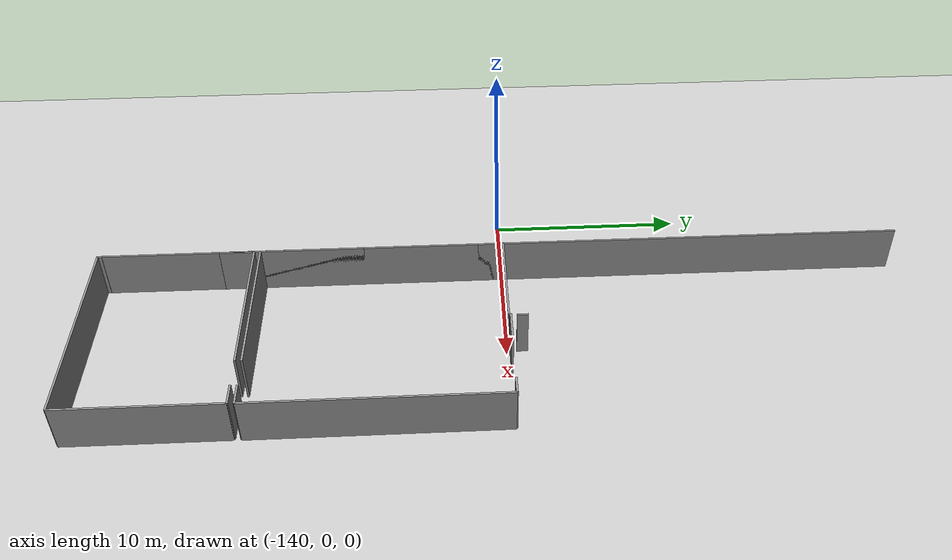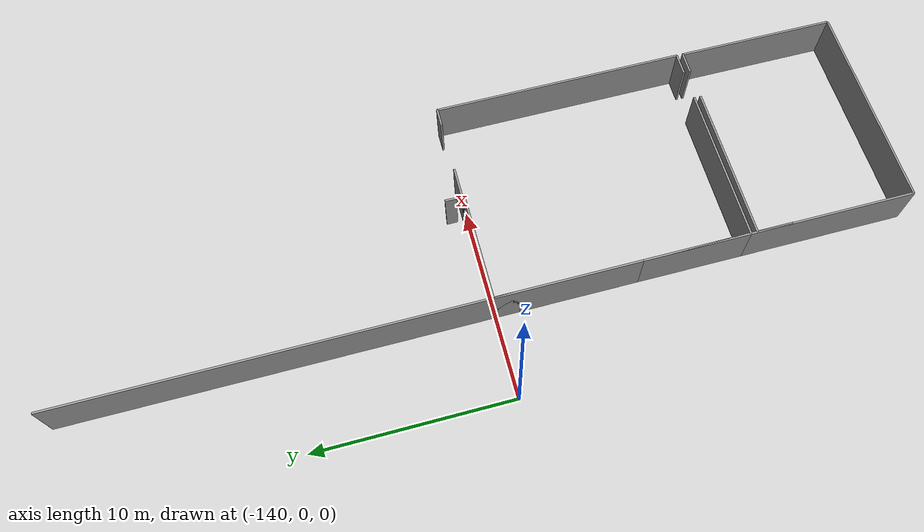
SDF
<sdf version="1.6">
 <world name="default">
  <model name="ground_plane">
   <static>1</static>
   <link name="link">
    <collision name="collision">
     <geometry><plane><normal>0 0 1</normal><size>100 100</size></plane></geometry>
     <surface><friction><ode><mu>100</mu><mu2>50</mu2></ode></friction></surface>
    </collision>
    <visual name="visual">
     <cast_shadows>0</cast_shadows>
     <geometry><plane><normal>0 0 1</normal><size>100 100</size></plane></geometry>
     <material>
      <script><uri>file://media/materials/scripts/gazebo.material</uri><name>Gazebo/Grey</name></script>
     </material>
    </visual>
   </link>
  </model>
  <model name="50037765_PLAN3">
   <static>1</static>
   <link name="Wall_25">
    <collision name="Wall_25_Collision">
     <geometry><box><size>1.12479586196 0.1 2.5</size></box></geometry>
     <pose>0.562397930978 0 1.25 0 0 0</pose>
    </collision>
    <visual name="Wall_25_Visual">
     <pose>0.562397930978 0 1.25 0 0 0</pose>
     <geometry><box><size>1.12479586196 0.1 2.5</size></box></geometry>
     <material>
      <script><uri>file://media/materials/scripts/gazebo.material</uri><name>Gazebo/Grey</name></script>
      <ambient>1 1 1 1</ambient>
     </material>
    </visual>
    <pose>10.6421213835 -33.7765379458 0 0 0 3.14159265359</pose>
   </link>
   <link name="Wall_26">
    <collision name="Wall_26_Collision">
     <geometry><box><size>7.97458203331 0.1 2.5</size></box></geometry>
     <pose>3.98729101666 0 1.25 0 0 0</pose>
    </collision>
    <visual name="Wall_26_Visual">
     <pose>3.98729101666 0 1.25 0 0 0</pose>
     <geometry><box><size>7.97458203331 0.1 2.5</size></box></geometry>
     <material>
      <script><uri>file://media/materials/scripts/gazebo.material</uri><name>Gazebo/Grey</name></script>
      <ambient>1 1 1 1</ambient>
     </material>
    </visual>
    <pose>7.97458203331 -33.7765379458 0 0 0 3.14159265359</pose>
   </link>
   <link name="Wall_27">
    <collision name="Wall_27_Collision">
     <geometry><box><size>5.40716405391 0.1 2.5</size></box></geometry>
     <pose>2.70358202696 0 1.25 0 0 0</pose>
    </collision>
    <visual name="Wall_27_Visual">
     <pose>2.70358202696 0 1.25 0 0 0</pose>
     <geometry><box><size>5.40716405391 0.1 2.5</size></box></geometry>
     <material>
      <script><uri>file://media/materials/scripts/gazebo.material</uri><name>Gazebo/Grey</name></script>
      <ambient>1 1 1 1</ambient>
     </material>
    </visual>
    <pose>0.0 -33.7765379458 0 0 0 1.57079632679</pose>
   </link>
   <link name="Wall_28">
    <collision name="Wall_28_Collision">
     <geometry><box><size>1.30902528452 0.1 2.5</size></box></geometry>
     <pose>0.654512642261 0 1.25 0 0 0</pose>
    </collision>
    <visual name="Wall_28_Visual">
     <pose>0.654512642261 0 1.25 0 0 0</pose>
     <geometry><box><size>1.30902528452 0.1 2.5</size></box></geometry>
     <material>
      <script><uri>file://media/materials/scripts/gazebo.material</uri><name>Gazebo/Grey</name></script>
      <ambient>1 1 1 1</ambient>
     </material>
    </visual>
    <pose>0.0 -22.3503993798 0 0 0 1.57079632679</pose>
   </link>
   <link name="Wall_29">
    <collision name="Wall_29_Collision">
     <geometry><box><size>5.44132580114 0.1 2.5</size></box></geometry>
     <pose>2.72066290057 0 1.25 0 0 0</pose>
    </collision>
    <visual name="Wall_29_Visual">
     <pose>2.72066290057 0 1.25 0 0 0</pose>
     <geometry><box><size>5.44132580114 0.1 2.5</size></box></geometry>
     <material>
      <script><uri>file://media/materials/scripts/gazebo.material</uri><name>Gazebo/Grey</name></script>
      <ambient>1 1 1 1</ambient>
     </material>
    </visual>
    <pose>0.0 -21.0413740953 0 0 0 0.0</pose>
   </link>
   <link name="Wall_30">
    <collision name="Wall_30_Collision">
     <geometry><box><size>0.0960799140873 0.1 2.5</size></box></geometry>
     <pose>0.0480399570436 0 1.25 0 0 0</pose>
    </collision>
    <visual name="Wall_30_Visual">
     <pose>0.0480399570436 0 1.25 0 0 0</pose>
     <geometry><box><size>0.0960799140873 0.1 2.5</size></box></geometry>
     <material>
      <script><uri>file://media/materials/scripts/gazebo.material</uri><name>Gazebo/Grey</name></script>
      <ambient>1 1 1 1</ambient>
     </material>
    </visual>
    <pose>5.44132580114 -21.0413740953 0 0 0 1.57079632679</pose>
   </link>
   <link name="Wall_31">
    <collision name="Wall_31_Collision">
     <geometry><box><size>1.64017055456 0.1 2.5</size></box></geometry>
     <pose>0.820085277278 0 1.25 0 0 0</pose>
    </collision>
    <visual name="Wall_31_Visual">
     <pose>0.820085277278 0 1.25 0 0 0</pose>
     <geometry><box><size>1.64017055456 0.1 2.5</size></box></geometry>
     <material>
      <script><uri>file://media/materials/scripts/gazebo.material</uri><name>Gazebo/Grey</name></script>
      <ambient>1 1 1 1</ambient>
     </material>
    </visual>
    <pose>5.44132580114 -20.9452941812 0 0 0 0.0</pose>
   </link>
   <link name="Wall_32">
    <collision name="Wall_32_Collision">
     <geometry><box><size>0.915580578132 0.1 2.5</size></box></geometry>
     <pose>0.457790289066 0 1.25 0 0 0</pose>
    </collision>
    <visual name="Wall_32_Visual">
     <pose>0.457790289066 0 1.25 0 0 0</pose>
     <geometry><box><size>0.915580578132 0.1 2.5</size></box></geometry>
     <material>
      <script><uri>file://media/materials/scripts/gazebo.material</uri><name>Gazebo/Grey</name></script>
      <ambient>1 1 1 1</ambient>
     </material>
    </visual>
    <pose>9.71644987259 -20.9452941812 0 0 0 0.0</pose>
   </link>
   <link name="Wall_33">
    <collision name="Wall_33_Collision">
     <geometry><box><size>12.8312477326 0.1 2.5</size></box></geometry>
     <pose>6.41562386629 0 1.25 0 0 0</pose>
    </collision>
    <visual name="Wall_33_Visual">
     <pose>6.41562386629 0 1.25 0 0 0</pose>
     <geometry><box><size>12.8312477326 0.1 2.5</size></box></geometry>
     <material>
      <script><uri>file://media/materials/scripts/gazebo.material</uri><name>Gazebo/Grey</name></script>
      <ambient>1 1 1 1</ambient>
     </material>
    </visual>
    <pose>10.6320304507 -20.9452941812 0 0 0 -1.57000989246</pose>
   </link>
   <link name="Wall_34">
    <collision name="Wall_34_Collision">
     <geometry><box><size>10.6064853942 0.1 2.5</size></box></geometry>
     <pose>5.3032426971 0 1.25 0 0 0</pose>
    </collision>
    <visual name="Wall_34_Visual">
     <pose>5.3032426971 0 1.25 0 0 0</pose>
     <geometry><box><size>10.6064853942 0.1 2.5</size></box></geometry>
     <material>
      <script><uri>file://media/materials/scripts/gazebo.material</uri><name>Gazebo/Grey</name></script>
      <ambient>1 1 1 1</ambient>
     </material>
    </visual>
    <pose>10.6168559246 -42.2056440595 0 0 0 3.14159265359</pose>
   </link>
   <link name="Wall_35">
    <collision name="Wall_35_Collision">
     <geometry><box><size>0.224694825537 0.1 2.5</size></box></geometry>
     <pose>0.112347412769 0 1.25 0 0 0</pose>
    </collision>
    <visual name="Wall_35_Visual">
     <pose>0.112347412769 0 1.25 0 0 0</pose>
     <geometry><box><size>0.224694825537 0.1 2.5</size></box></geometry>
     <material>
      <script><uri>file://media/materials/scripts/gazebo.material</uri><name>Gazebo/Grey</name></script>
      <ambient>1 1 1 1</ambient>
     </material>
    </visual>
    <pose>0.0103705304094 -42.2056440595 0 0 0 1.57079632679</pose>
   </link>
   <link name="Wall_36">
    <collision name="Wall_36_Collision">
     <geometry><box><size>1.80620071297 0.1 2.5</size></box></geometry>
     <pose>0.903100356487 0 1.25 0 0 0</pose>
    </collision>
    <visual name="Wall_36_Visual">
     <pose>0.903100356487 0 1.25 0 0 0</pose>
     <geometry><box><size>1.80620071297 0.1 2.5</size></box></geometry>
     <material>
      <script><uri>file://media/materials/scripts/gazebo.material</uri><name>Gazebo/Grey</name></script>
      <ambient>1 1 1 1</ambient>
     </material>
    </visual>
    <pose>0.0103705304094 -35.9098678901 0 0 0 1.57079632679</pose>
   </link>
   <link name="Wall_37">
    <collision name="Wall_37_Collision">
     <geometry><box><size>7.94939282832 0.1 2.5</size></box></geometry>
     <pose>3.97469641416 0 1.25 0 0 0</pose>
    </collision>
    <visual name="Wall_37_Visual">
     <pose>3.97469641416 0 1.25 0 0 0</pose>
     <geometry><box><size>7.94939282832 0.1 2.5</size></box></geometry>
     <material>
      <script><uri>file://media/materials/scripts/gazebo.material</uri><name>Gazebo/Grey</name></script>
      <ambient>1 1 1 1</ambient>
     </material>
    </visual>
    <pose>0.0103705304094 -34.1036671771 0 0 0 0.0</pose>
   </link>
   <link name="Wall_38">
    <collision name="Wall_38_Collision">
     <geometry><box><size>1.13356506046 0.1 2.5</size></box></geometry>
     <pose>0.566782530231 0 1.25 0 0 0</pose>
    </collision>
    <visual name="Wall_38_Visual">
     <pose>0.566782530231 0 1.25 0 0 0</pose>
     <geometry><box><size>1.13356506046 0.1 2.5</size></box></geometry>
     <material>
      <script><uri>file://media/materials/scripts/gazebo.material</uri><name>Gazebo/Grey</name></script>
      <ambient>1 1 1 1</ambient>
     </material>
    </visual>
    <pose>9.49846539026 -34.1036671771 0 0 0 0.0</pose>
   </link>
   <link name="Wall_39">
    <collision name="Wall_39_Collision">
     <geometry><box><size>8.10199109284 0.1 2.5</size></box></geometry>
     <pose>4.05099554642 0 1.25 0 0 0</pose>
    </collision>
    <visual name="Wall_39_Visual">
     <pose>4.05099554642 0 1.25 0 0 0</pose>
     <geometry><box><size>8.10199109284 0.1 2.5</size></box></geometry>
     <material>
      <script><uri>file://media/materials/scripts/gazebo.material</uri><name>Gazebo/Grey</name></script>
      <ambient>1 1 1 1</ambient>
     </material>
    </visual>
    <pose>10.6320304507 -34.1036671771 0 0 0 -1.57266926578</pose>
   </link>
   <link name="Wall_42">
    <collision name="Wall_42_Collision">
     <geometry><box><size>0.56859991485 0.1 2.5</size></box></geometry>
     <pose>0.284299957425 0 1.25 0 0 0</pose>
    </collision>
    <visual name="Wall_42_Visual">
     <pose>0.284299957425 0 1.25 0 0 0</pose>
     <geometry><box><size>0.56859991485 0.1 2.5</size></box></geometry>
     <material>
      <script><uri>file://media/materials/scripts/gazebo.material</uri><name>Gazebo/Grey</name></script>
      <ambient>1 1 1 1</ambient>
     </material>
    </visual>
    <pose>5.5019476517 -20.6463788929 0 0 0 1.57079632679</pose>
   </link>
   <link name="Wall_471">
    <collision name="Wall_471_Collision">
     <geometry><box><size>42.2468211655 0.1 2.5</size></box></geometry>
     <pose>21.1234105828 0 1.25 0 0 0</pose>
    </collision>
    <visual name="Wall_471_Visual">
     <pose>21.1234105828 0 1.25 0 0 0</pose>
     <geometry><box><size>42.2468211655 0.1 2.5</size></box></geometry>
     <material>
      <script><uri>file://media/materials/scripts/gazebo.material</uri><name>Gazebo/Grey</name></script>
      <ambient>1 1 1 1</ambient>
     </material>
    </visual>
    <pose>0.0 -42.2468211655 0 0 0 1.57079632679</pose>
   </link>
   <pose>-135.75 21.1468211655 0 0 0 0</pose>
  </model>
 </world>
</sdf>
